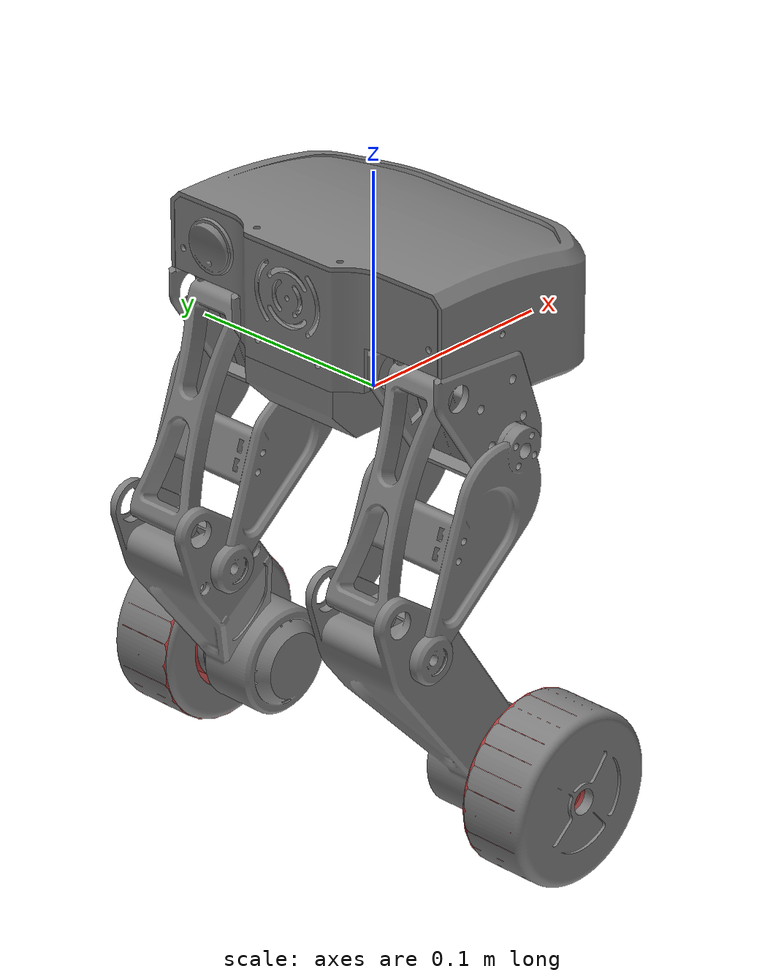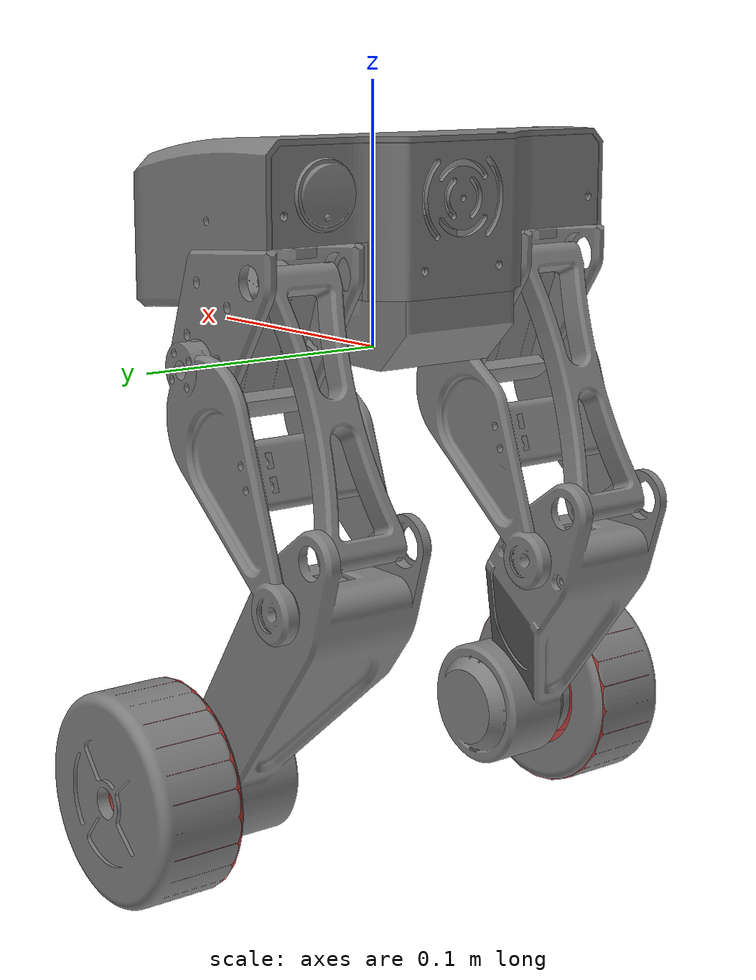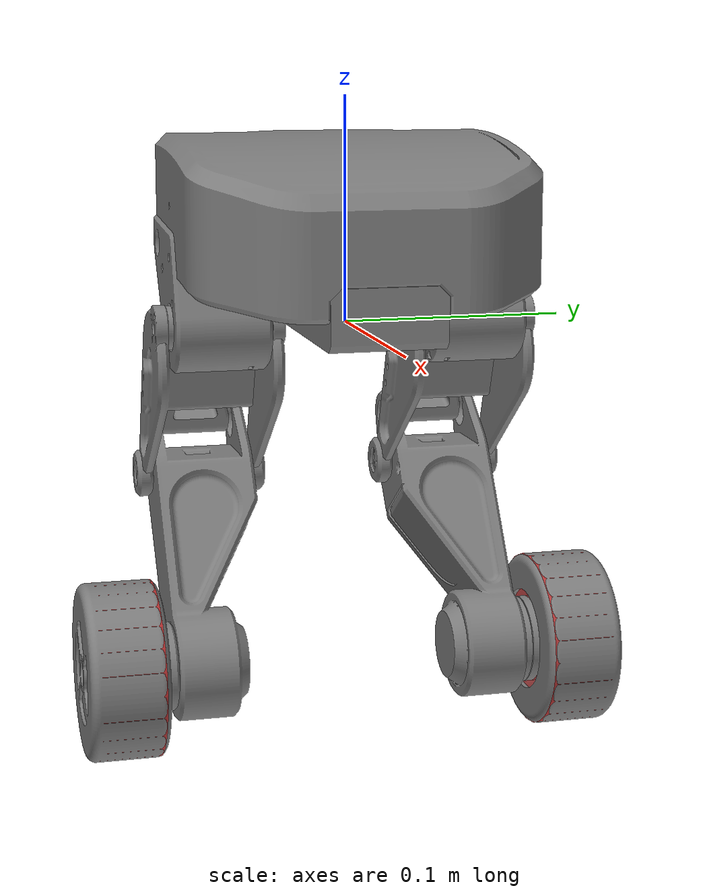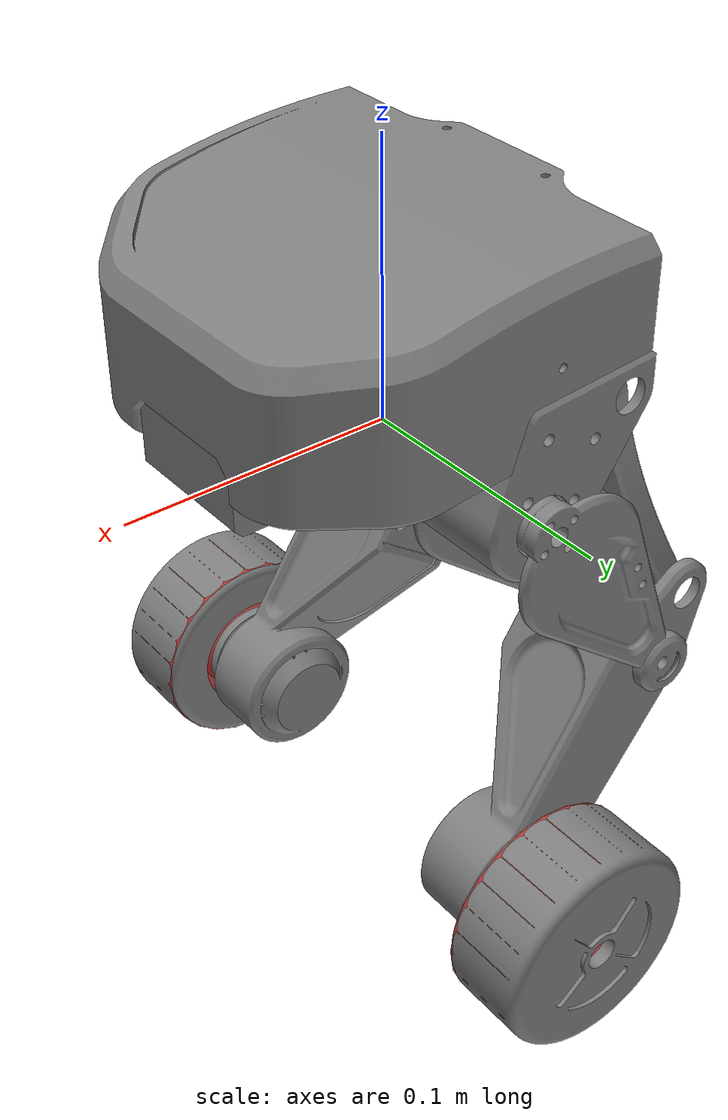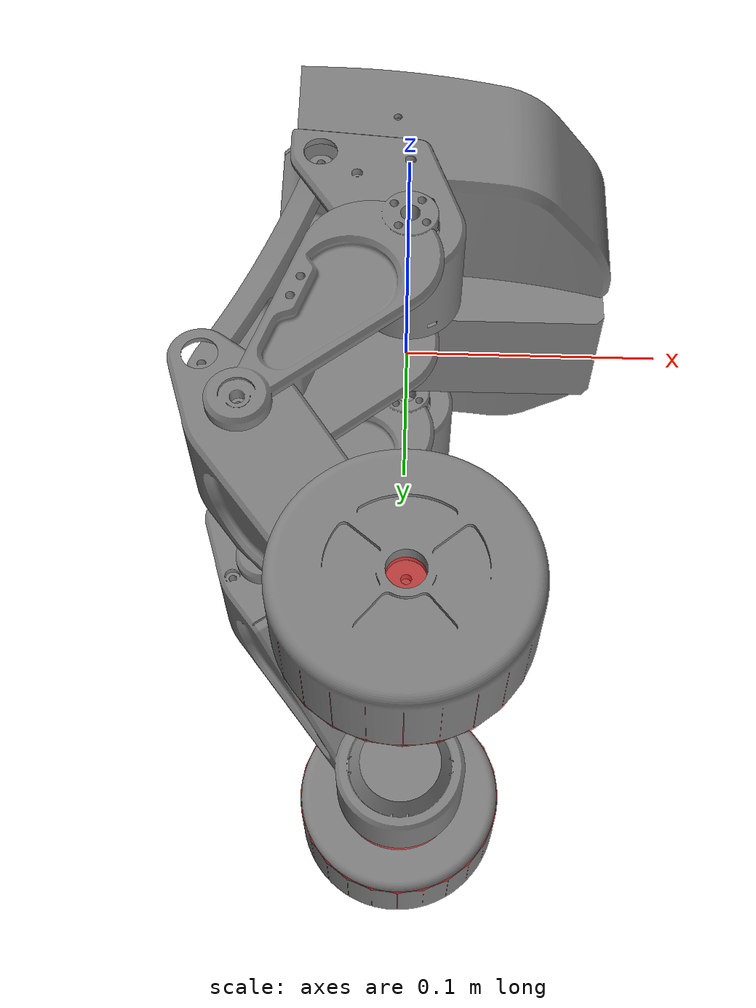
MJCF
<mujoco model="robot">
    <compiler angle="radian" meshdir="stl" />
    <default>
        <mesh scale="0.001 0.001 0.001" />
        <geom type="mesh" />
        <joint damping="0.02" armature="0.05" frictionloss="0.01" axis="1 0 0" />
        <default class="foot_collider">
            <geom type="cylinder" quat="0.7071 0 0.7071 0" size="0.04 0.014" rgba="1 0 0 0.5"
                contype="1" conaffinity="1" />
        </default>
        <default class="mirror">
            <mesh scale="-0.001 0.001 0.001" />
        </default>
        <default class="wheel_joint">
            <joint armature="1.5e-5" damping="1e-3" frictionloss="2e-3" />
        </default>
    </default>
    <asset>
        <mesh name="bat_cap" file="Back Battery Cap.stl" />
        <mesh name="bat_main" file="Battery Holder.stl" />
        <mesh name="back" file="Back.stl" />
        <mesh name="battery" file="Battery.stl" />
        <mesh name="mounting_plate" file="Mounting Plate.stl" />
        <mesh name="shell" file="Shell.stl" />
        <mesh name="rocker_switch" file="Rocker Switch.stl" />

        <mesh name="R_hip" file="Servo Leg Housing Assembly.stl" />
        <mesh name="R_hip_servo" file="ServoHip.stl" />
        <mesh name="R_thigh" file="Upper Leg Asembly.stl" />
        <mesh name="R_shin" file="Lower Leg.stl" />
        <mesh name="R_shin_servo" file="GM3506 v2.stl" />
        <mesh name="R_wheel_adapter" file="WheelAdapter.stl" />
        <mesh name="R_link" file="Leg Link Assembly.stl" />
        <mesh name="R_foot" file="Wheel.stl" />

        <mesh name="L_hip" file="Servo Leg Housing Assembly.stl" class="mirror" />
        <mesh name="L_hip_servo" file="ServoHip.stl" class="mirror" />
        <mesh name="L_thigh" file="Upper Leg Asembly.stl" class="mirror" />
        <mesh name="L_shin" file="Lower Leg.stl" class="mirror" />
        <mesh name="L_shin_servo" file="GM3506 v2.stl" class="mirror" />
        <mesh name="L_wheel_adapter" file="WheelAdapter.stl" class="mirror" />
        <mesh name="L_link" file="Leg Link Assembly.stl" class="mirror" />
        <mesh name="L_foot" file="Wheel.stl" class="mirror" />
    </asset>
    <worldbody>
        <body name="body" quat="0.7071 0 0 0.7071">
            <site name="ImuSensor" pos="0 0 0.05" euler="0 0 -1.57079633" />
            <geom mesh="bat_cap" mass="0.011" />
            <geom mesh="bat_main" mass="0.025" />
            <geom mesh="back" mass="0.02" />
            <geom mesh="mounting_plate" mass="0.065" />
            <geom mesh="rocker_switch" mass="0.06" />
            <geom mesh="shell" mass="0.122" />
            <geom mesh="battery" mass="0.22" />
            <geom type="box" size="0.028 0.042 0.005" pos="0 -0.0265 0.04579" mass="0.08" />

            <body name="R_leg" pos="-0.0579 0 0">
                <geom mesh="R_hip" mass="0.03" />
                <geom mesh="R_hip_servo" mass="0.063" />
                <body name="R_thigh">
                    <joint name="R_hip" pos="-0.019 -0.000008 0.000007" />
                    <geom mesh="R_thigh" mass="0.05" />
                    <body name="R_shin">
                        <joint name="R_shin" pos="-0.019 0.0548 -0.077343" />
                        <geom mesh="R_shin" mass="0.067" />
                        <body name="R_link">
                            <joint name="R_link" pos="-0.019 0.069236 -0.057164" />
                            <geom mesh="R_link" mass="0.035" />
                        </body>
                        <body name="R_foot">
                            <geom mesh="R_shin_servo" mass="0.063" />
                            <joint name="R_foot" pos="-0.019 -0.000496 -0.154963" class="wheel_joint" />
                            <geom mesh="R_foot" mass="0.061" contype="0" conaffinity="0" />
                            <geom pos="-0.045 -0.000496 -0.154963" mass="0" class="foot_collider" />
                        </body>
                    </body>
                </body>
            </body>

            <body name="L_leg" pos="0.0579 0 0">
                <geom mesh="L_hip" mass="0.03" />
                <geom mesh="L_hip_servo" mass="0.063" />
                <body name="L_thigh">
                    <joint name="L_hip" pos="-0.019 -0.000008 0.000007" />
                    <geom mesh="L_thigh" mass="0.05" />
                    <body name="L_shin">
                        <joint name="L_shin" pos="-0.019 0.0548 -0.077343" />
                        <geom mesh="L_shin" mass="0.067" />
                        <body name="L_link">
                            <joint name="L_link" pos="-0.019 0.069236 -0.057164" />
                            <geom mesh="L_link" mass="0.035" />
                        </body>
                        <body name="L_foot">
                            <geom mesh="L_shin_servo" mass="0.063" />
                            <joint name="L_foot" pos="-0.019 -0.000496 -0.154963" class="wheel_joint" />
                            <geom mesh="L_foot" mass="0.061" contype="0" conaffinity="0" />
                            <geom pos="0.045 -0.000496 -0.154963" mass="0" class="foot_collider" />
                        </body>
                    </body>
                </body>
            </body>

        </body>
    </worldbody>
    <equality>
        <connect anchor="-0.019 0.033083 0.033665" body1="body" body2="R_link"
            name="eq_constraint_R" solref="0.01 1" solimp="0.999 0.9999 0.0001 0.5 2" />
        <connect anchor="-0.019 0.033083 0.033665" body1="body" body2="L_link"
            name="eq_constraint_L" solref="0.01 1" solimp="0.999 0.9999 0.0001 0.5 2" />
    </equality>
    <contact>
        <exclude body1="R_link" body2="R_leg" />
        <exclude body1="R_link" body2="body" />
        <exclude body1="R_link" body2="R_thigh" />
        <exclude body1="R_thigh" body2="body" />
        <exclude body1="R_thigh" body2="R_leg" />

        <exclude body1="L_link" body2="L_leg" />
        <exclude body1="L_link" body2="body" />
        <exclude body1="L_link" body2="L_thigh" />
        <exclude body1="L_thigh" body2="body" />
        <exclude body1="L_thigh" body2="L_leg" />
    </contact>
    <actuator>
        <position name="L_hip" joint="L_hip" kp="32" kv="5" ctrlrange="-0.20 0.65" />
        <position name="R_hip" joint="R_hip" kp="32" kv="5" ctrlrange="-0.20 0.65" />

        <motor name="L_foot" joint="L_foot"
            ctrllimited="true" ctrlrange="-0.1 0.1"
            gear="1" />
        <motor name="R_foot" joint="R_foot"
            ctrllimited="true" ctrlrange="-0.1 0.1"
            gear="1" />
    </actuator>
    <sensor>
        <framequat name="ImuSensor_Framequat" objtype="site" objname="ImuSensor" />
        <velocimeter name="ImuSensor_Velocimeter" site="ImuSensor" />
        <gyro name="ImuSensor_Gyro" site="ImuSensor" />
        <accelerometer name="ImuSensor_Accelerometer" site="ImuSensor" />
    </sensor>
</mujoco>
